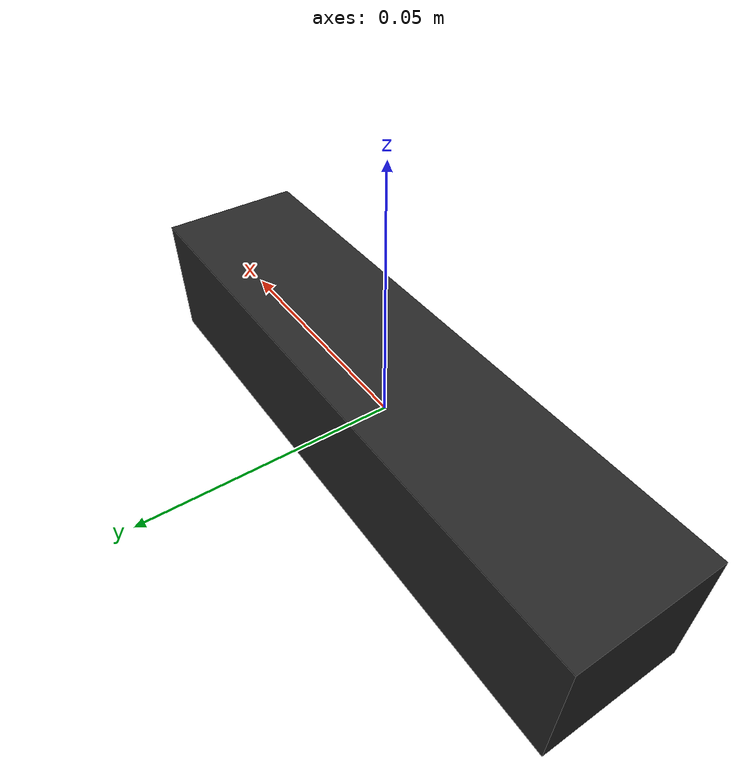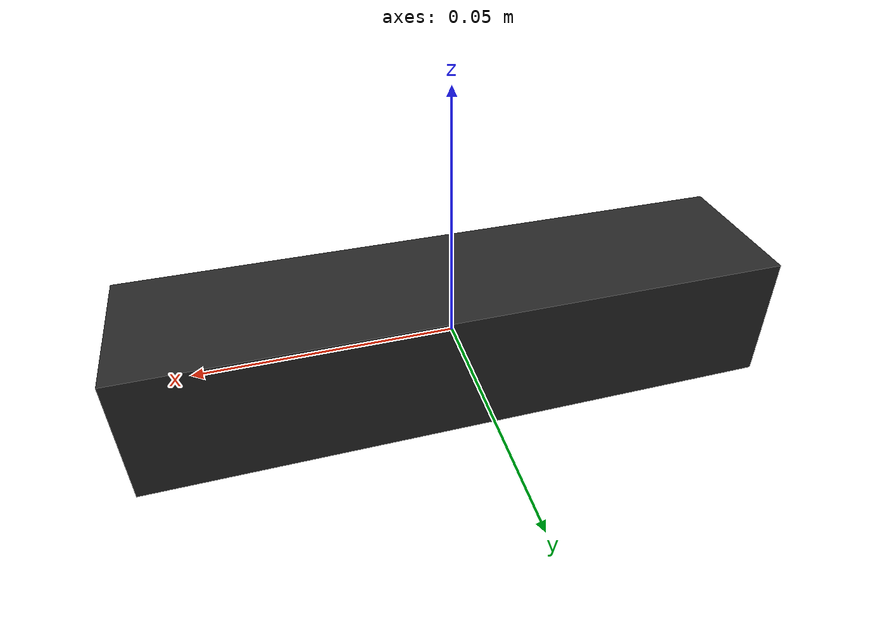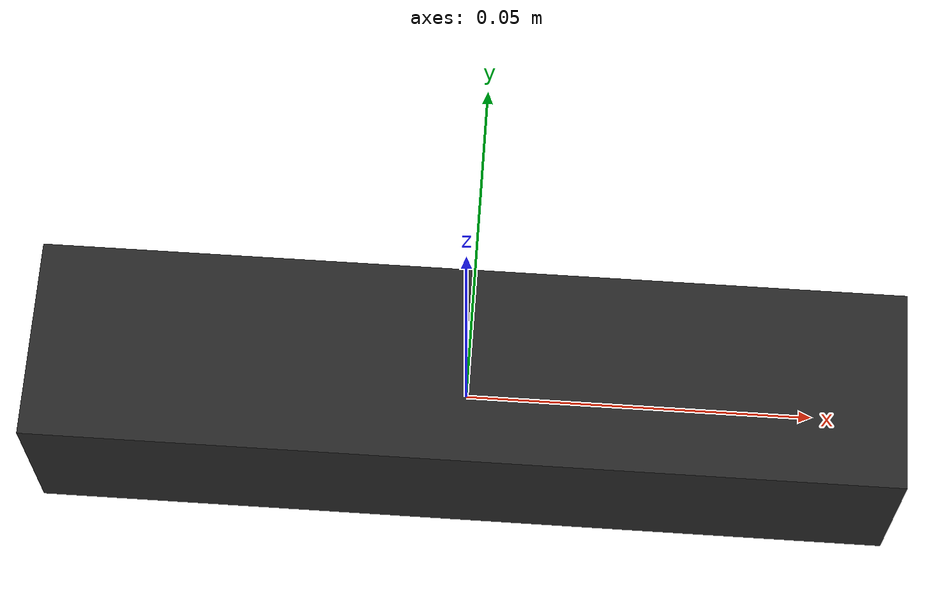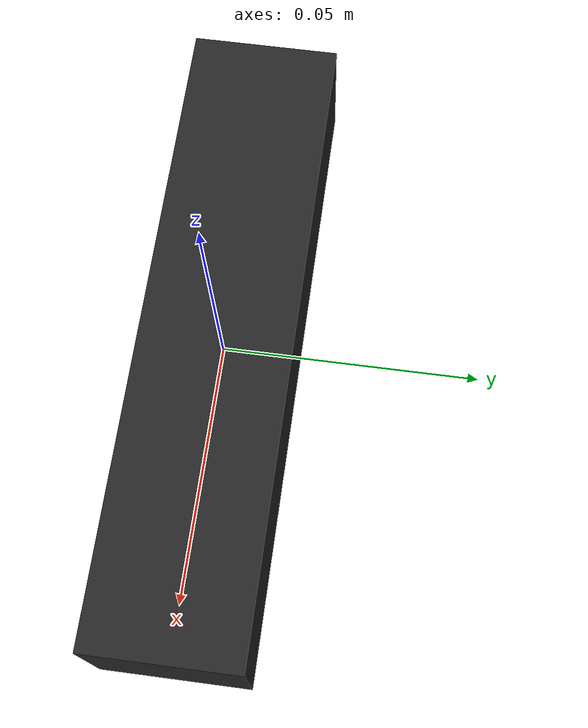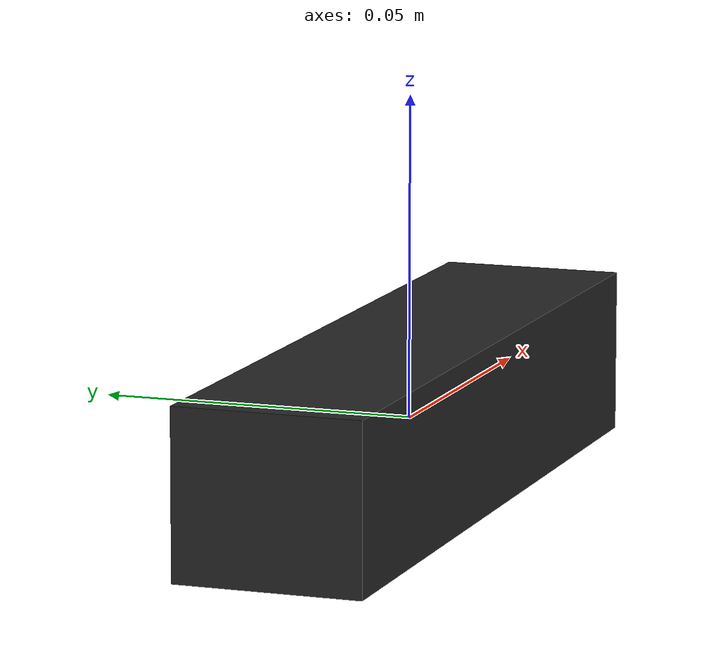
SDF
<?xml version="1.0" ?>
<sdf version='1.9'>
    <model name='Gemini_2L'>
        <static>false</static>

        <link name="gemini2l_body">
            <pose>0 0 0 0 0 0</pose>

            <inertial>
                <mass>0.152</mass>
                <inertia>
                    <ixx>1.9215e-05</ixx>
                    <iyy>2.0333e-04</iyy>
                    <izz>2.0542e-04</izz>
                    <ixy>0.0</ixy>
                    <ixz>0.0</ixz>
                    <iyz>0.0</iyz>
                </inertia>
            </inertial>

            <collision name="body_collision">
                <geometry>
                    <box>
                        <size>0.124 0.029 0.026</size>
                    </box>
                </geometry>
            </collision>

            <visual name="body_visual">
                <geometry>
                    <box>
                        <size>0.124 0.029 0.026</size>
                    </box>
                </geometry>
                <material>
                    <ambient>0.1 0.1 0.1 1</ambient>
                    <diffuse>0.15 0.15 0.15 1</diffuse>
                    <specular>0.02 0.02 0.02 1</specular>
                </material>
            </visual>

        <!-- RGB Camera -->
        <sensor name="rgb_camera" type="camera">
            <pose>0 0 0 0 0 0</pose>

            <always_on>1</always_on>
            <update_rate>30</update_rate>
            <visualize>false</visualize>

            <topic>/gemini2l/rgb/image_raw</topic>

            <camera name="rgb_camera_sensor">
                <camera_info_topic>gemini2l/rgb/camera_info</camera_info_topic>
                <optical_frame_id>rgb_camera_optical_frame</optical_frame_id>

                <horizontal_fov>1.6406094969</horizontal_fov>

                <image>
                    <width>640</width>
                    <height>480</height>
                    <format>R8G8B8</format>
                </image>

                <clip>
                    <near>0.05</near>
                    <far>20.0</far>
                </clip>

                <intrinsics>
                    <fx>596.8097</fx>
                    <fy>593.0244</fy>
                    <cx>640.0</cx>
                    <cy>400.0</cy>
                    <s>0.0</s>
                </intrinsics>

                <!-- Gerçek kamera versi gelince distortion ekle-->

            </camera>
        </sensor>

        <!-- Left IR Camera -->

        <sensor name="left_ir_camera" type="camera">
            <pose>0 0 0 0 0 0</pose>

            <always_on>0</always_on>
            <update_rate>30</update_rate>
            <visualize>false</visualize>

            <topic>/gemini2l/left_ir/image_raw</topic>

            <camera name="left_ir_camera_sensor">
                <camera_info_topic>gemini2l/left_ir/camera_info</camera_info_topic>
                <optical_frame_id>left_ir_camera_optical_frame</optical_frame_id>

                <horizontal_fov>1.588249619</horizontal_fov>

                <image>
                    <width>1280</width>
                    <height>800</height>
                    <format>L8</format>
                </image>

                <clip>
                    <near>0.05</near>
                    <far>20.0</far>
                </clip>

                <intrinsics>
                    <fx>628.9262</fx>
                    <fy>615.9460</fy>
                    <cx>640.0</cx>
                    <cy>400.0</cy>
                    <s>0.0</s>
                </intrinsics>

                <projection>
                    <p_fx>628.9262</p_fx>
                    <p_fy>615.9460</p_fy>
                    <p_cx>640.0</p_cx>
                    <p_cy>400.0</p_cy>
                    <tx>0.0</tx>
                    <ty>0.0</ty>
                </projection>
            </camera>
        </sensor>

        <!-- Right IR Camera -->

        <sensor name="right_ir_camera" type="camera">
            <pose>0 0 0 0 0 0</pose>

            <always_on>0</always_on>
            <update_rate>30</update_rate>
            <visualize>false</visualize>

            <topic>/gemini2l/right_ir/image_raw</topic>

            <camera name="right_ir_camera_sensor">
                <camera_info_topic>gemini2l/right_ir/camera_info</camera_info_topic>
                <optical_frame_id>right_ir_camera_optical_frame</optical_frame_id>

                <horizontal_fov>1.588249619</horizontal_fov>

                <image>
                    <width>1280</width>
                    <height>800</height>
                    <format>L8</format>
                </image>

                <clip>
                    <near>0.05</near>
                    <far>20.0</far>
                </clip>

                <intrinsics>
                    <fx>628.9262</fx>
                    <fy>615.9460</fy>
                    <cx>640.0</cx>
                    <cy>400.0</cy>
                    <s>0.0</s>
                </intrinsics>

                <projection>
                    <p_fx>628.9262</p_fx>
                    <p_fy>615.9460</p_fy>
                    <p_cx>640.0</p_cx>
                    <p_cy>400.0</p_cy>
                    <tx>-62.8926</tx>
                    <ty>0.0</ty>
                </projection>
            </camera>
        </sensor>

        <!-- Depth Camera -->
        <sensor name="depth_camera" type="depth_camera">
        <!--
          Depth çıktısını cihazın "işlenmiş merkezi çıkışı" gibi düşün.
          O yüzden gövde merkezine koyuyoruz.
        -->
        <pose>0 0 0 0 0 0</pose>

        <always_on>false</always_on>
        <update_rate>30</update_rate>
        <visualize>false</visualize>

        <topic>/gemini2l/depth/image_raw</topic>

        <camera name="depth_camera_sensor">
          <camera_info_topic>/gemini2l/depth/camera_info</camera_info_topic>
          <optical_frame_id>gemini2l_depth_optical_frame</optical_frame_id>

          <!-- Depth HFOV = 91 deg -->
          <horizontal_fov>1.5882496193</horizontal_fov>

          <!-- Depth image için float format -->
          <image>
            <width>1280</width>
            <height>800</height>
            <format>R_FLOAT32</format>
          </image>

          <!-- Render clip -->
          <clip>
            <near>0.05</near>
            <far>20.0</far>
          </clip>

          <!--
            Depth sensörünün ölçüm aralığı:
            resmi aralık 0.2 - 10.0 m
          -->
          <depth_camera>
            <output>depths</output>
            <clip>
              <near>0.2</near>
              <far>10.0</far>
            </clip>
          </depth_camera>

          <intrinsics>
            <fx>628.9262</fx>
            <fy>615.9460</fy>
            <cx>640.0</cx>
            <cy>400.0</cy>
            <s>0.0</s>
          </intrinsics>

          <noise>
            <type>gaussian</type>
            <mean>0.0</mean>
            <stddev>0.002</stddev>
          </noise>

        </camera>
      </sensor>
    </link>
  </model>
</sdf>
